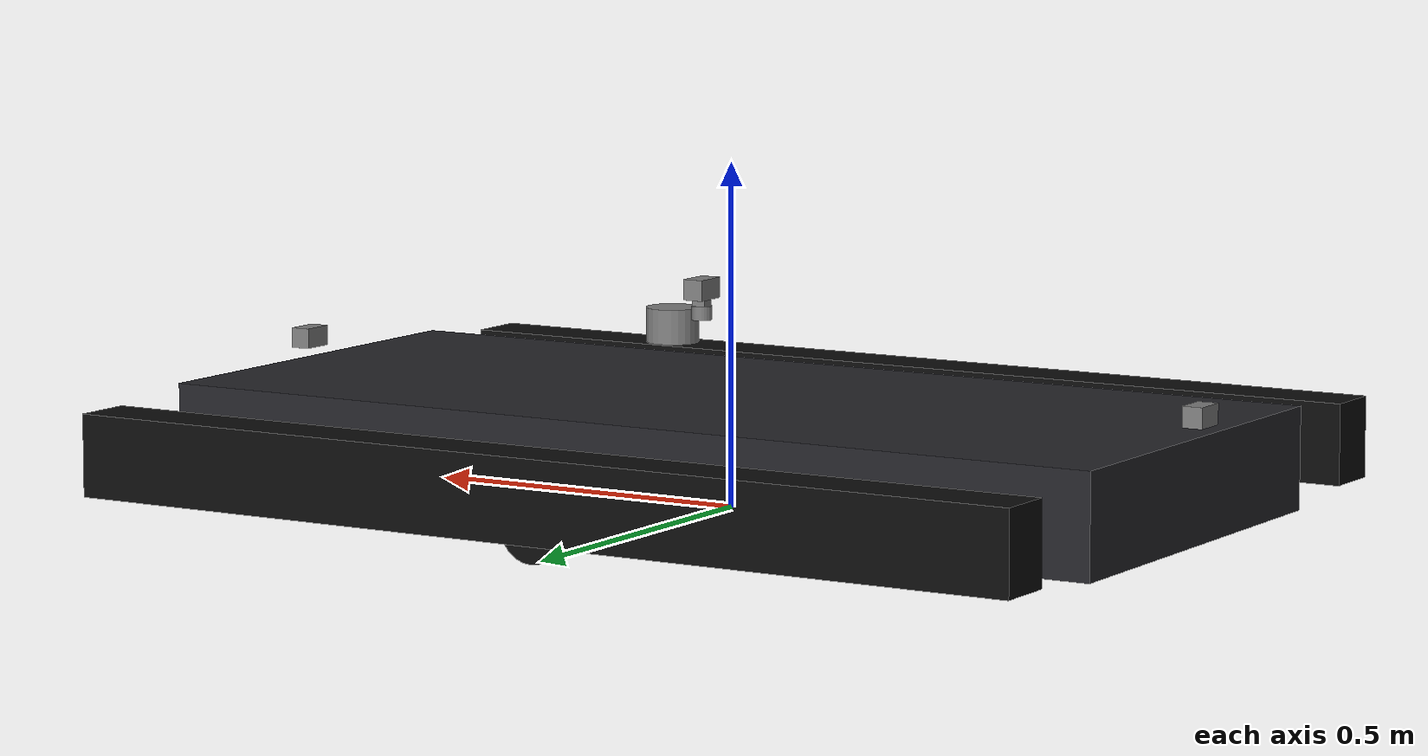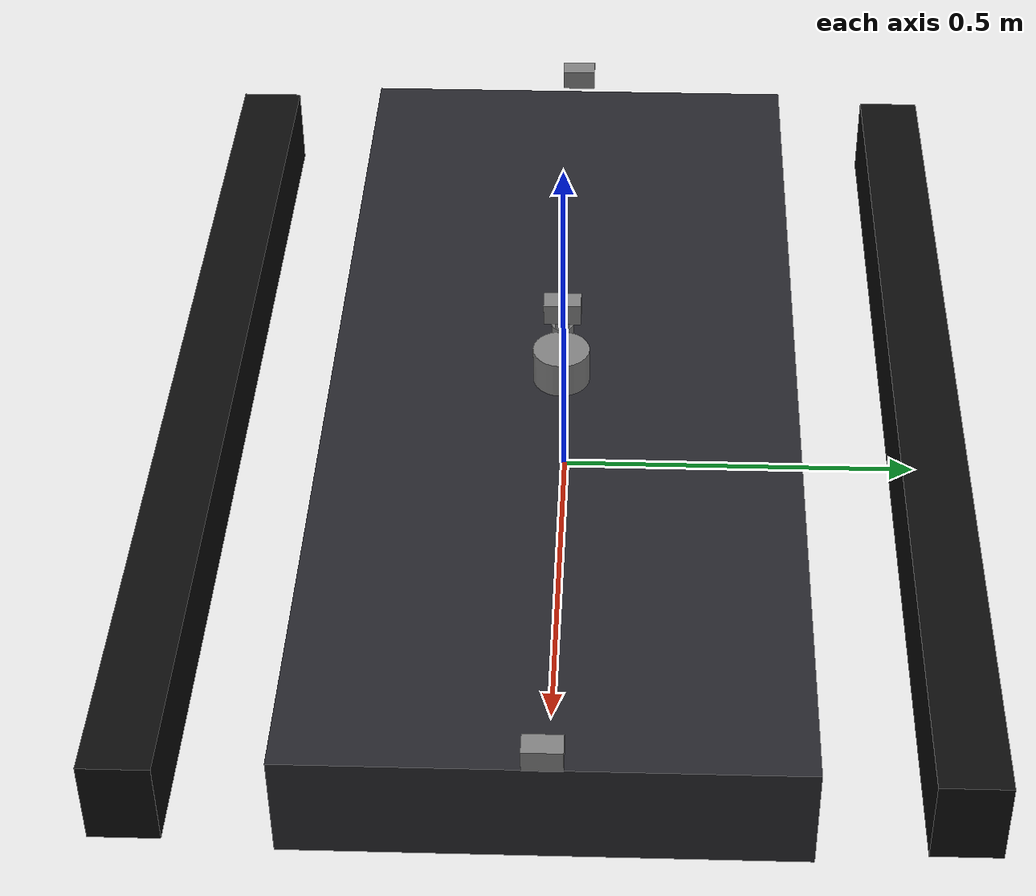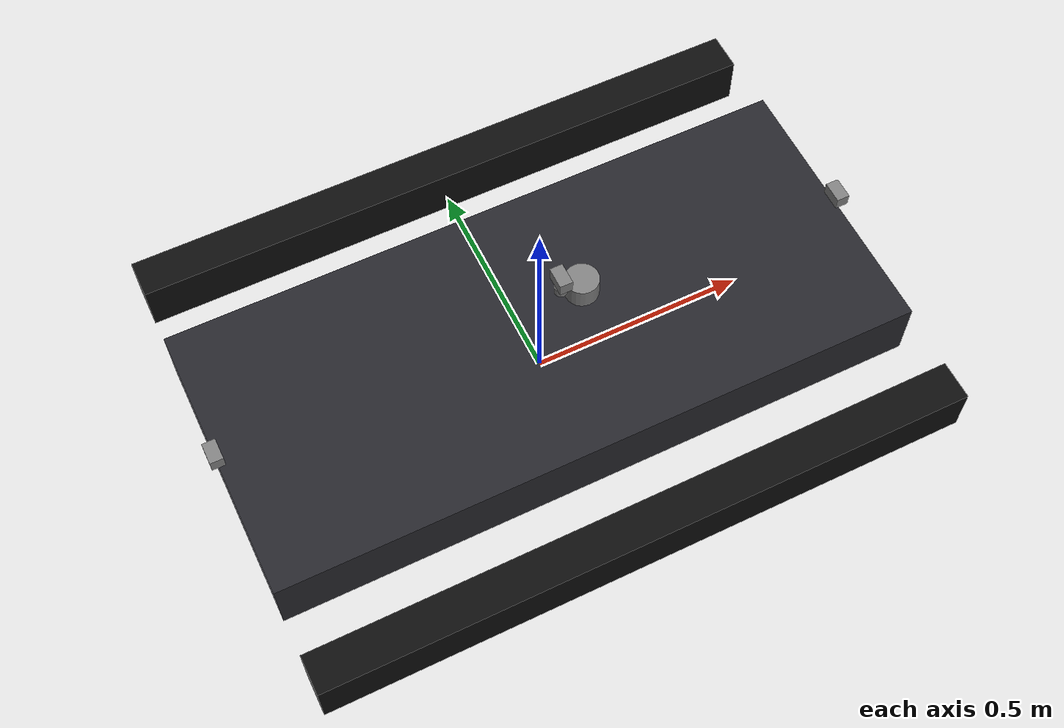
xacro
<?xml version="1.0"?>
<robot name="teknofest_robot" xmlns:xacro="http://www.ros.org/wiki/xacro">

  <xacro:property name="chassis_length" value="1.49"/>
  <xacro:property name="chassis_width"  value="0.65"/>   <!-- hull only, STILL a guess - tracks stick out to the full 1.10m measured width -->
  <xacro:property name="chassis_height" value="0.15"/>   <!-- not measured, unchanged placeholder -->
  <xacro:property name="chassis_mass"   value="8.0"/>    <!-- not measured, unchanged placeholder -->

  <xacro:property name="track_length"     value="1.49"/>
  <xacro:property name="track_width"      value="0.09"/> <!-- not measured, unchanged placeholder -->
  <xacro:property name="track_height"     value="0.12"/> <!-- not measured, unchanged placeholder -->
  <xacro:property name="track_separation" value="1.01"/> <!-- = measured total width (1.10) - track_width, the critical number for turning kinematics -->
  <xacro:property name="track_mass"       value="1.5"/>
  <xacro:property name="ground_clearance" value="0.03"/>
  <xacro:property name="sim_wheel_radius" value="0.05"/> <!-- sim-only drive-wheel proxy, see Tracks section below -->

  <!-- sensor mount offsets, relative to base_link origin (chassis center, at ground_clearance height) -->
  <xacro:property name="lidar_xyz"  value="0.10 0 ${chassis_height + 0.02}"/>
  <xacro:property name="imu_xyz"    value="0 0 ${chassis_height/2}"/>       <!-- BNO055 inside ESP32 enclosure -->
  <xacro:property name="cam_front_xyz" value="${chassis_length/2} 0 ${chassis_height*0.7}"/>
  <xacro:property name="cam_rear_xyz"  value="-${chassis_length/2} 0 ${chassis_height*0.7}"/>
  <xacro:property name="cam_rear_rpy"  value="0 0 3.14159"/>                <!-- facing backward -->

  <!-- aim pan/tilt mount base, relative to base_link -->
  <xacro:property name="aim_mount_xyz" value="0.05 0 ${chassis_height + 0.03}"/>
  <!-- servo mechanical range - matches SERVO_MIN_US/MAX_US in esp32_firmware/config.h (500-2500us -> ~180deg).
       Update if the physical servo horn / linkage doesn't actually swing the full range. -->
  <xacro:property name="pan_limit"  value="1.5708"/>  <!-- +-90 deg -->
  <xacro:property name="tilt_limit" value="0.7854"/>  <!-- +-45 deg, tilt usually needs less range than pan -->

  <material name="hull_dark">
    <color rgba="0.15 0.15 0.17 1.0"/>
  </material>
  <material name="track_black">
    <color rgba="0.05 0.05 0.05 1.0"/>
  </material>
  <material name="sensor_grey">
    <color rgba="0.5 0.5 0.5 1.0"/>
  </material>

  <link name="base_footprint"/>

  <joint name="base_footprint_joint" type="fixed">
    <parent link="base_footprint"/>
    <child link="base_link"/>
    <origin xyz="0 0 ${ground_clearance + track_height/2}" rpy="0 0 0"/>
  </joint>

  <link name="base_link">
    <visual>
      <geometry>
        <box size="${chassis_length} ${chassis_width} ${chassis_height}"/>
      </geometry>
      <material name="hull_dark"/>
    </visual>
    <collision>
      <geometry>
        <box size="${chassis_length} ${chassis_width} ${chassis_height}"/>
      </geometry>
    </collision>
    <inertial>
      <mass value="${chassis_mass}"/>
      <origin xyz="0 0 0"/>
      <inertia ixx="0.10" ixy="0" ixz="0" iyy="0.15" iyz="0" izz="0.20"/>
    </inertial>
  </link>

  <xacro:macro name="track" params="side y_sign">
    <link name="${side}_track">
      <visual>
        <geometry>
          <box size="${track_length} ${track_width} ${track_height}"/>
        </geometry>
        <material name="track_black"/>
      </visual>
      <collision>
        <geometry>
          <box size="${track_length} ${track_width} ${track_height}"/>
        </geometry>
      </collision>
      <inertial>
        <mass value="${track_mass}"/>
        <origin xyz="0 0 0"/>
        <inertia ixx="0.01" ixy="0" ixz="0" iyy="0.02" iyz="0" izz="0.02"/>
      </inertial>
    </link>

    <joint name="${side}_track_joint" type="fixed">
      <parent link="base_link"/>
      <child link="${side}_track"/>
      <origin xyz="0 ${y_sign} 0" rpy="0 0 0"/>
    </joint>
  </xacro:macro>

  <xacro:track side="left"  y_sign="${track_separation/2}"/>
  <xacro:track side="right" y_sign="-${track_separation/2}"/>

  <xacro:macro name="drive_wheel" params="side y_sign">
    <link name="${side}_drive_wheel">
      <visual>
        <geometry><cylinder radius="${sim_wheel_radius}" length="0.04"/></geometry>
        <material name="track_black"/>
      </visual>
      <collision>
        <geometry><cylinder radius="${sim_wheel_radius}" length="0.04"/></geometry>
      </collision>
      <inertial>
        <mass value="0.3"/>
        <origin xyz="0 0 0"/>
        <inertia ixx="0.0003" ixy="0" ixz="0" iyy="0.0003" iyz="0" izz="0.0003"/>
      </inertial>
    </link>

    <joint name="${side}_drive_wheel_joint" type="continuous">
      <parent link="base_link"/>
      <child link="${side}_drive_wheel"/>
      <origin xyz="0 ${y_sign} ${sim_wheel_radius - ground_clearance - track_height/2}" rpy="1.5707963 0 0"/>
      <axis xyz="0 0 1"/>
    </joint>
  </xacro:macro>

  <xacro:drive_wheel side="left"  y_sign="${track_separation/2}"/>
  <xacro:drive_wheel side="right" y_sign="-${track_separation/2}"/>

  <!-- ==========================================================
       Lidar
       ========================================================== -->
  <link name="lidar_link">
    <visual>
      <geometry><cylinder radius="0.038" length="0.05"/></geometry>
      <material name="sensor_grey"/>
    </visual>
    <collision>
      <geometry><cylinder radius="0.038" length="0.05"/></geometry>
    </collision>
    <inertial>
      <mass value="0.19"/>
      <origin xyz="0 0 0"/>
      <inertia ixx="0.0001" ixy="0" ixz="0" iyy="0.0001" iyz="0" izz="0.0001"/>
    </inertial>
  </link>

  <joint name="lidar_joint" type="fixed">
    <parent link="base_link"/>
    <child link="lidar_link"/>
    <origin xyz="${lidar_xyz}" rpy="0 0 0"/>
  </joint>

  <!-- ==========================================================
       IMU (BNO055, inside the ESP32 enclosure)
       ========================================================== -->
  <link name="imu_link"/>

  <joint name="imu_joint" type="fixed">
    <parent link="base_link"/>
    <child link="imu_link"/>
    <origin xyz="${imu_xyz}" rpy="0 0 0"/>
  </joint>

  <xacro:macro name="camera" params="name xyz rpy:='0 0 0' parent:='base_link'">
    <link name="camera_${name}_link">
      <visual>
        <geometry><box size="0.03 0.05 0.03"/></geometry>
        <material name="sensor_grey"/>
      </visual>
      <collision>
        <geometry><box size="0.03 0.05 0.03"/></geometry>
      </collision>
      <inertial>
        <mass value="0.05"/>
        <origin xyz="0 0 0"/>
        <inertia ixx="0.00001" ixy="0" ixz="0" iyy="0.00001" iyz="0" izz="0.00001"/>
      </inertial>
    </link>

    <joint name="camera_${name}_joint" type="fixed">
      <parent link="${parent}"/>
      <child link="camera_${name}_link"/>
      <origin xyz="${xyz}" rpy="${rpy}"/>
    </joint>

    <link name="camera_${name}_optical_frame"/>

    <joint name="camera_${name}_optical_joint" type="fixed">
      <parent link="camera_${name}_link"/>
      <child link="camera_${name}_optical_frame"/>
      <origin xyz="0 0 0" rpy="-1.5707963 0 -1.5707963"/>
    </joint>
  </xacro:macro>

  <xacro:camera name="front" xyz="${cam_front_xyz}"/>
  <xacro:camera name="rear"  xyz="${cam_rear_xyz}" rpy="${cam_rear_rpy}"/>

  <link name="aim_pan_base"/>

  <joint name="aim_pan_base_joint" type="fixed">
    <parent link="base_link"/>
    <child link="aim_pan_base"/>
    <origin xyz="${aim_mount_xyz}" rpy="0 0 0"/>
  </joint>

  <link name="aim_pan_link">
    <visual>
      <geometry><cylinder radius="0.015" length="0.02"/></geometry>
      <material name="sensor_grey"/>
    </visual>
    <collision>
      <geometry><cylinder radius="0.015" length="0.02"/></geometry>
    </collision>
    <inertial>
      <mass value="0.02"/>
      <origin xyz="0 0 0"/>
      <inertia ixx="0.000005" ixy="0" ixz="0" iyy="0.000005" iyz="0" izz="0.000005"/>
    </inertial>
  </link>

  <joint name="aim_pan_joint" type="revolute">
    <parent link="aim_pan_base"/>
    <child link="aim_pan_link"/>
    <origin xyz="0 0 0.01" rpy="0 0 0"/>
    <axis xyz="0 0 1"/>
    <limit lower="${-pan_limit}" upper="${pan_limit}" effort="1.0" velocity="3.0"/>
  </joint>

  <link name="aim_tilt_link">
    <visual>
      <geometry><box size="0.02 0.02 0.02"/></geometry>
      <material name="sensor_grey"/>
    </visual>
    <collision>
      <geometry><box size="0.02 0.02 0.02"/></geometry>
    </collision>
    <inertial>
      <mass value="0.02"/>
      <origin xyz="0 0 0"/>
      <inertia ixx="0.000005" ixy="0" ixz="0" iyy="0.000005" iyz="0" izz="0.000005"/>
    </inertial>
  </link>

  <joint name="aim_tilt_joint" type="revolute">
    <parent link="aim_pan_link"/>
    <child link="aim_tilt_link"/>
    <origin xyz="0 0 0.015" rpy="0 0 0"/>
    <axis xyz="0 1 0"/>
    <limit lower="${-tilt_limit}" upper="${tilt_limit}" effort="1.0" velocity="3.0"/>
  </joint>

  <xacro:camera name="aim" xyz="0 0 0.02" parent="aim_tilt_link"/>

  <gazebo reference="lidar_link">
    <sensor name="rplidar_c1" type="gpu_lidar">
      <pose>0 0 0 0 0 0</pose>
      <topic>scan</topic>
      <gz_frame_id>lidar_link</gz_frame_id>
      <update_rate>10</update_rate>
      <lidar>
        <scan>
          <horizontal>
            <samples>360</samples>
            <resolution>1</resolution>
            <min_angle>-3.14159</min_angle>
            <max_angle>3.14159</max_angle>
          </horizontal>
        </scan>
        <range>
          <min>0.10</min>
          <max>12.0</max>
          <resolution>0.01</resolution>
        </range>
      </lidar>
      <always_on>true</always_on>
      <visualize>false</visualize>
    </sensor>
  </gazebo>

  <gazebo reference="imu_link">
    <sensor name="bno055" type="imu">
      <pose>0 0 0 0 0 0</pose>
      <topic>esp32/imu</topic>
      <gz_frame_id>imu_link</gz_frame_id>
      <update_rate>50</update_rate>
      <always_on>true</always_on>
    </sensor>
  </gazebo>

  <xacro:macro name="gz_camera" params="name update_rate:=30">
    <gazebo reference="camera_${name}_link">
      <sensor name="camera_${name}" type="camera">
        <pose>0 0 0 0 0 0</pose>
        <topic>${name}/image_raw</topic>
        <gz_frame_id>camera_${name}_optical_frame</gz_frame_id>
        <update_rate>${update_rate}</update_rate>
        <camera>
          <horizontal_fov>1.089</horizontal_fov> <!-- ~62deg placeholder, front/rear differ in real FOV (C30 106 deg, C50 76 deg) - tune per camera once mounted -->
          <image>
            <width>640</width>
            <height>480</height>
          </image>
          <clip>
            <near>0.05</near>
            <far>50</far>
          </clip>
        </camera>
        <always_on>true</always_on>
        <visualize>false</visualize>
      </sensor>
    </gazebo>
  </xacro:macro>

  <xacro:gz_camera name="front"/>
  <xacro:gz_camera name="rear"/>
  <xacro:gz_camera name="aim" update_rate="30"/>

  <gazebo>
    <plugin filename="gz-sim-diff-drive-system" name="gz::sim::systems::DiffDrive">
      <left_joint>left_drive_wheel_joint</left_joint>
      <right_joint>right_drive_wheel_joint</right_joint>
      <wheel_separation>${track_separation}</wheel_separation>
      <wheel_radius>${sim_wheel_radius}</wheel_radius>
      <odom_publish_frequency>30</odom_publish_frequency>
      <topic>cmd_vel</topic>
      <odom_topic>odom</odom_topic>
      <tf_topic>/tf</tf_topic>
      <frame_id>odom</frame_id>
      <child_frame_id>base_footprint</child_frame_id>
    </plugin>
    <plugin filename="gz-sim-joint-state-publisher-system" name="gz::sim::systems::JointStatePublisher"/>
  </gazebo>

</robot>
